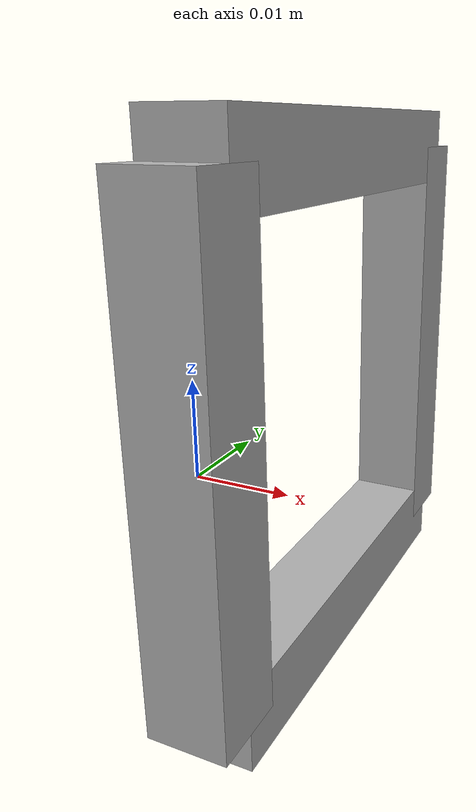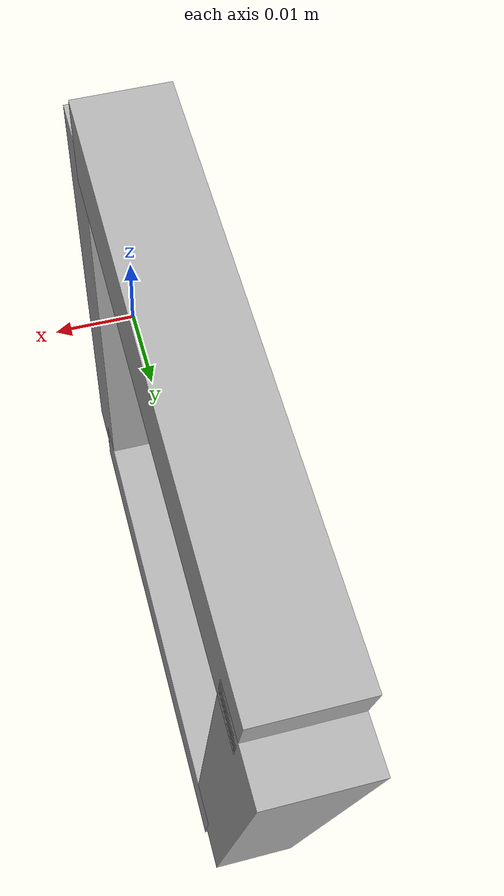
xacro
<?xml version="1.0" ?>
<robot name="test3" xmlns:xacro="http://www.ros.org/wiki/xacro">

<xacro:include filename="$(find test3_description)/urdf/materials.xacro" />
<xacro:include filename="$(find test3_description)/urdf/test3.trans" />
<xacro:include filename="$(find test3_description)/urdf/test3.gazebo" />
<link name="base_link">
  <inertial>
    <origin rpy="0 0 0" xyz="0 0 0"/>
    <mass value="0.000628"/>
    <inertia ixx="0.0" ixy="0.0" ixz="0.0" iyy="0.0" iyz="-0.0" izz="0.0"/>
  </inertial>
  <visual>
    <origin rpy="0 0 0" xyz="0 0 0"/>
    <geometry>
      <box size="0.01 0.01 0.06"/>
    </geometry>
    <material name="silver_default"/>
  </visual>
  <collision>
    <origin rpy="0 0 0" xyz="0 0 0"/>
    <geometry>
      <box size="0.01 0.01 0.06"/>
    </geometry>
  </collision>
</link>

<link name="4.1_1">
  <inertial>
    <origin rpy="0 0 0" xyz="0.0 0.0 0.0"/>
    <mass value="0.000628"/>
    <inertia ixx="0.0" ixy="0.0" ixz="0.0" iyy="0.0" iyz="0.0" izz="0.0"/>
  </inertial>
  <visual>
    <origin rpy="0 0 0" xyz="0.0 0.0 0.0"/>
    <geometry>
      <box size="0.01 0.06 0.01"/>
    </geometry>
    <material name="silver_default"/>
  </visual>
  <collision>
    <origin rpy="0 0 0" xyz="0.0 0.0 0.0"/>
    <geometry>
      <box size="0.01 0.06 0.01"/>
    </geometry>
  </collision>
</link>

<link name="3.1_1">
  <inertial>
    <origin rpy="0 0 0" xyz="0.0 0.0 0.0"/>
    <mass value="0.000628"/>
    <inertia ixx="0.0" ixy="0.0" ixz="0.0" iyy="0.0" iyz="0.0" izz="0.0"/>
  </inertial>
  <visual>
    <origin rpy="0 0 0" xyz="0 0 0"/>
    <geometry>
      <box size="0.01 0.06 0.01"/>
    </geometry>
    <material name="silver_default"/>
  </visual>
  <collision>
    <origin rpy="0 0 0" xyz="0 0 0"/>
    <geometry>
      <box size="0.01 0.06 0.01"/>
    </geometry>
  </collision>
</link>

<link name="2.2_1">
  <inertial>
    <origin rpy="0 0 0" xyz=" 0 0 0"/>
    <mass value="0.000628"/>
    <inertia ixx="0.0" ixy="0.0" ixz="0.0" iyy="0.0" iyz="0.0" izz="0.0"/>
  </inertial>
  <visual>
    <origin rpy="0 0 0" xyz="0 0 0"/>
    <geometry>
      <box size="0.01 0.01 0.06"/>
    </geometry>
    <material name="silver_default"/>
  </visual>
  <collision>
    <origin rpy="0 0 0" xyz="0 0 0"/>
    <geometry>
      <box size="0.01 0.06 0.01"/>
    </geometry>
  </collision>
</link>-->

<joint name="Rev0" type="continuous">
  <origin rpy="0 0 0" xyz="0 0.03 0.03"/>
  <parent link="base_link"/>
  <child link="4.1_1"/>
  <axis xyz="-0.0 0.0 1.0"/>
</joint>

<joint name="Rev1" type="continuous">
  <origin rpy="0 0 0" xyz="0 0 -0.06"/>
  <parent link="4.1_1"/>
  <child link="3.1_1"/>
  <axis xyz="-0.0 -1.0 0.0"/>
</joint>

<joint name="Rev2" type="fixed">
  <origin rpy="0 0 0" xyz="0 0.03 0.03"/>
  <parent link="3.1_1"/>
  <child link="2.2_1"/>

</joint>

</robot>

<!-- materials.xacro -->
<robot name="test3" xmlns:xacro="http://www.ros.org/wiki/xacro" >

<material name="silver_default">
  <color rgba="0.700 0.700 0.700 1.000"/>
</material>

</robot>

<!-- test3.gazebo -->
<robot name="test3" xmlns:xacro="http://www.ros.org/wiki/xacro" >

<xacro:property name="body_color" value="Gazebo/Silver" />

<gazebo>
  <plugin filename="libgazebo_ros_control.so" name="control"/>
</gazebo>
<gazebo reference="base_link">
  <material>${body_color}</material>
  <mu1>0.2</mu1>
  <mu2>0.2</mu2>
  <selfCollide>true</selfCollide>
  <gravity>true</gravity>
</gazebo>

<gazebo reference="4.1_1">
  <material>${body_color}</material>
  <mu1>0.2</mu1>
  <mu2>0.2</mu2>
  <selfCollide>true</selfCollide>
</gazebo>

<gazebo reference="3.1_1">
  <material>${body_color}</material>
  <mu1>0.2</mu1>
  <mu2>0.2</mu2>
  <selfCollide>true</selfCollide>
</gazebo>

<gazebo reference="2.2_1">
  <material>${body_color}</material>
  <mu1>0.2</mu1>
  <mu2>0.2</mu2>
  <selfCollide>true</selfCollide>
</gazebo>

</robot>
